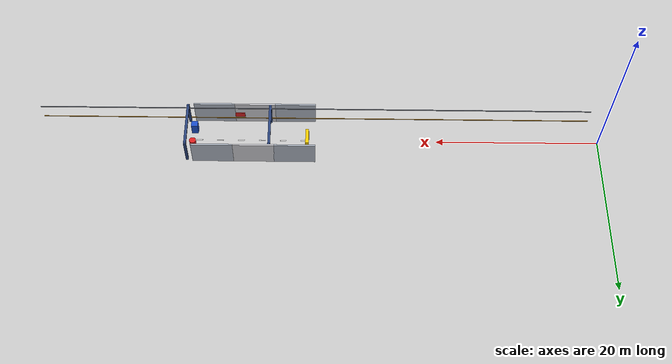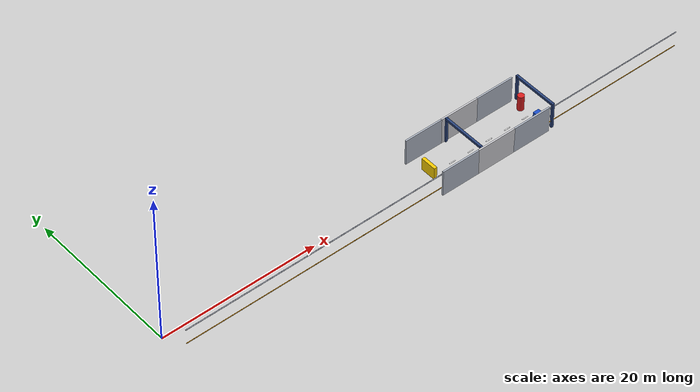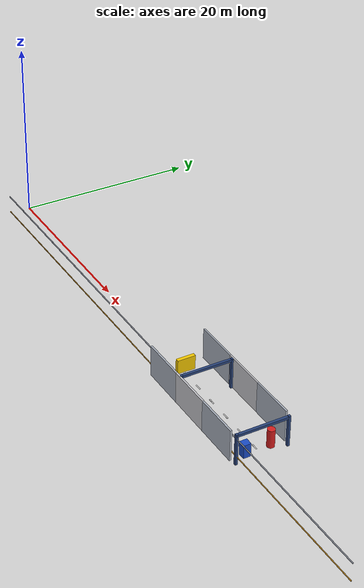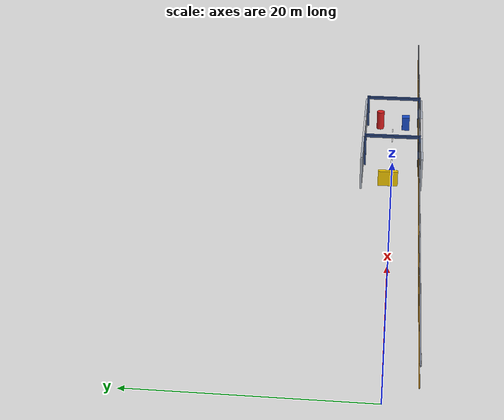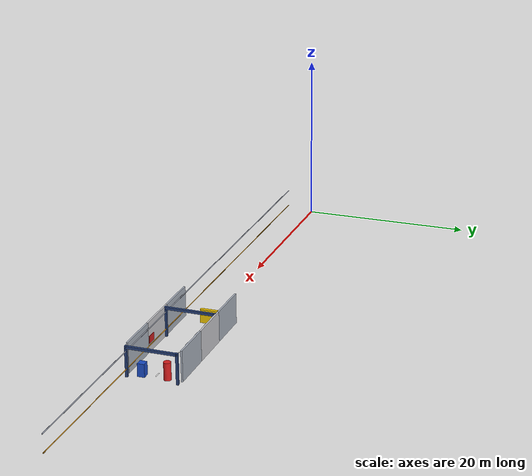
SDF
<sdf version="1.10">
 <world name="tunnel_circuit">
  <model name="tw_Ao_7">
   <static>true</static>
   <pose>37.500 -3.000 1.750 0 0 0.0000</pose>
   <link name="link">
    <collision name="col"><geometry><box><size>5.060 0.200 3.500</size></box></geometry></collision>
    <visual name="vis">
     <geometry><box><size>5.060 0.200 3.500</size></box></geometry>
     <material>
      <ambient>0.42 0.44 0.48 1</ambient>
      <diffuse>0.68 0.71 0.76 1</diffuse>
      <specular>0.1 0.1 0.1 1</specular>
      <pbr>
       <metal><albedo_map>detail.png</albedo_map><roughness>0.9</roughness><metalness>0.0</metalness></metal>
      </pbr>
     </material>
    </visual>
   </link>
  </model>
  <model name="tw_Ao_8">
   <static>true</static>
   <pose>42.500 -3.000 1.750 0 0 0.0000</pose>
   <link name="link">
    <collision name="col"><geometry><box><size>5.060 0.200 3.500</size></box></geometry></collision>
    <visual name="vis">
     <geometry><box><size>5.060 0.200 3.500</size></box></geometry>
     <material>
      <ambient>0.50 0.50 0.52 1</ambient>
      <diffuse>0.80 0.80 0.82 1</diffuse>
      <specular>0.1 0.1 0.1 1</specular>
      <pbr>
       <metal><albedo_map>detail.png</albedo_map><roughness>0.92</roughness><metalness>0.0</metalness></metal>
      </pbr>
     </material>
    </visual>
   </link>
  </model>
  <model name="tw_Ao_9">
   <static>true</static>
   <pose>47.500 -3.000 1.750 0 0 0.0000</pose>
   <link name="link">
    <collision name="col"><geometry><box><size>5.060 0.200 3.500</size></box></geometry></collision>
    <visual name="vis">
     <geometry><box><size>5.060 0.200 3.500</size></box></geometry>
     <material>
      <ambient>0.42 0.44 0.48 1</ambient>
      <diffuse>0.68 0.71 0.76 1</diffuse>
      <specular>0.1 0.1 0.1 1</specular>
      <pbr>
       <metal><albedo_map>detail.png</albedo_map><roughness>0.9</roughness><metalness>0.0</metalness></metal>
      </pbr>
     </material>
    </visual>
   </link>
  </model>
  <model name="tw_Ai_7">
   <static>true</static>
   <pose>37.500 3.000 1.750 0 0 0.0000</pose>
   <link name="link">
    <collision name="col"><geometry><box><size>5.060 0.200 3.500</size></box></geometry></collision>
    <visual name="vis">
     <geometry><box><size>5.060 0.200 3.500</size></box></geometry>
     <material>
      <ambient>0.42 0.44 0.48 1</ambient>
      <diffuse>0.68 0.71 0.76 1</diffuse>
      <specular>0.1 0.1 0.1 1</specular>
      <pbr>
       <metal><albedo_map>detail.png</albedo_map><roughness>0.9</roughness><metalness>0.0</metalness></metal>
      </pbr>
     </material>
    </visual>
   </link>
  </model>
  <model name="tw_Ai_8">
   <static>true</static>
   <pose>42.500 3.000 1.750 0 0 0.0000</pose>
   <link name="link">
    <collision name="col"><geometry><box><size>5.060 0.200 3.500</size></box></geometry></collision>
    <visual name="vis">
     <geometry><box><size>5.060 0.200 3.500</size></box></geometry>
     <material>
      <ambient>0.50 0.50 0.52 1</ambient>
      <diffuse>0.80 0.80 0.82 1</diffuse>
      <specular>0.1 0.1 0.1 1</specular>
      <pbr>
       <metal><albedo_map>detail.png</albedo_map><roughness>0.92</roughness><metalness>0.0</metalness></metal>
      </pbr>
     </material>
    </visual>
   </link>
  </model>
  <model name="tw_Ai_9">
   <static>true</static>
   <pose>47.500 3.000 1.750 0 0 0.0000</pose>
   <link name="link">
    <collision name="col"><geometry><box><size>5.060 0.200 3.500</size></box></geometry></collision>
    <visual name="vis">
     <geometry><box><size>5.060 0.200 3.500</size></box></geometry>
     <material>
      <ambient>0.42 0.44 0.48 1</ambient>
      <diffuse>0.68 0.71 0.76 1</diffuse>
      <specular>0.1 0.1 0.1 1</specular>
      <pbr>
       <metal><albedo_map>detail.png</albedo_map><roughness>0.9</roughness><metalness>0.0</metalness></metal>
      </pbr>
     </material>
    </visual>
   </link>
  </model>
  <model name="rib4_p">
   <static>true</static>
   <pose>40.566 2.820 1.750 0 0 0.0000</pose>
   <link name="link">
    <collision name="col"><geometry><box><size>0.300 0.250 3.500</size></box></geometry></collision>
    <visual name="vis">
     <geometry><box><size>0.300 0.250 3.500</size></box></geometry>
     <material>
      <ambient>0.10 0.16 0.30 1</ambient>
      <diffuse>0.16 0.26 0.48 1</diffuse>
      <specular>0.3 0.3 0.35 1</specular>
     </material>
    </visual>
   </link>
  </model>
  <model name="rib4_m">
   <static>true</static>
   <pose>40.566 -2.820 1.750 0 0 0.0000</pose>
   <link name="link">
    <collision name="col"><geometry><box><size>0.300 0.250 3.500</size></box></geometry></collision>
    <visual name="vis">
     <geometry><box><size>0.300 0.250 3.500</size></box></geometry>
     <material>
      <ambient>0.10 0.16 0.30 1</ambient>
      <diffuse>0.16 0.26 0.48 1</diffuse>
      <specular>0.3 0.3 0.35 1</specular>
     </material>
    </visual>
   </link>
  </model>
  <model name="rib4_c">
   <static>true</static>
   <pose>40.566 0.000 3.340 0 0 0.0000</pose>
   <link name="link">
    <collision name="col"><geometry><box><size>0.300 5.700 0.280</size></box></geometry></collision>
    <visual name="vis">
     <geometry><box><size>0.300 5.700 0.280</size></box></geometry>
     <material>
      <ambient>0.10 0.16 0.30 1</ambient>
      <diffuse>0.16 0.26 0.48 1</diffuse>
      <specular>0.3 0.3 0.35 1</specular>
     </material>
    </visual>
   </link>
  </model>
  <model name="rib5_p">
   <static>true</static>
   <pose>50.708 2.820 1.750 0 0 0.0000</pose>
   <link name="link">
    <collision name="col"><geometry><box><size>0.300 0.250 3.500</size></box></geometry></collision>
    <visual name="vis">
     <geometry><box><size>0.300 0.250 3.500</size></box></geometry>
     <material>
      <ambient>0.10 0.16 0.30 1</ambient>
      <diffuse>0.16 0.26 0.48 1</diffuse>
      <specular>0.3 0.3 0.35 1</specular>
     </material>
    </visual>
   </link>
  </model>
  <model name="rib5_m">
   <static>true</static>
   <pose>50.708 -2.820 1.750 0 0 0.0000</pose>
   <link name="link">
    <collision name="col"><geometry><box><size>0.300 0.250 3.500</size></box></geometry></collision>
    <visual name="vis">
     <geometry><box><size>0.300 0.250 3.500</size></box></geometry>
     <material>
      <ambient>0.10 0.16 0.30 1</ambient>
      <diffuse>0.16 0.26 0.48 1</diffuse>
      <specular>0.3 0.3 0.35 1</specular>
     </material>
    </visual>
   </link>
  </model>
  <model name="rib5_c">
   <static>true</static>
   <pose>50.708 0.000 3.340 0 0 0.0000</pose>
   <link name="link">
    <collision name="col"><geometry><box><size>0.300 5.700 0.280</size></box></geometry></collision>
    <visual name="vis">
     <geometry><box><size>0.300 5.700 0.280</size></box></geometry>
     <material>
      <ambient>0.10 0.16 0.30 1</ambient>
      <diffuse>0.16 0.26 0.48 1</diffuse>
      <specular>0.3 0.3 0.35 1</specular>
     </material>
    </visual>
   </link>
  </model>
  <model name="sign3">
   <static>true</static>
   <pose>44.369 -2.840 1.500 0 0 0.0000</pose>
   <link name="link">
    <visual name="vis">
     <geometry><box><size>1.200 0.050 0.800</size></box></geometry>
     <material>
      <ambient>0.55 0.08 0.08 1</ambient>
      <diffuse>0.82 0.12 0.12 1</diffuse>
      <specular>0.1 0.1 0.1 1</specular>
     </material>
    </visual>
   </link>
  </model>
  <model name="pipe_A">
   <static>true</static>
   <pose>35.000 -2.780 2.900 0 1.5708 0</pose>
   <link name="link">
    <visual name="vis">
     <geometry><cylinder><radius>0.06</radius><length>68.000</length></cylinder></geometry>
     <material>
      <ambient>0.35 0.36 0.40 1</ambient>
      <diffuse>0.55 0.57 0.62 1</diffuse>
      <specular>0.4 0.4 0.4 1</specular>
     </material>
    </visual>
   </link>
  </model>
  <model name="tray_A">
   <static>true</static>
   <pose>35.000 -2.780 0.900 0 1.5708 0</pose>
   <link name="link">
    <visual name="vis">
     <geometry><cylinder><radius>0.05</radius><length>68.000</length></cylinder></geometry>
     <material>
      <ambient>0.45 0.30 0.05 1</ambient>
      <diffuse>0.75 0.52 0.10 1</diffuse>
      <specular>0.1 0.1 0.1 1</specular>
     </material>
    </visual>
   </link>
  </model>
  <model name="dash14">
   <static>true</static>
   <pose>36.406 0.000 0.012 0 0 0.0000</pose>
   <link name="link">
    <visual name="vis">
     <geometry><box><size>0.800 0.120 0.020</size></box></geometry>
     <material>
      <ambient>0.7 0.7 0.7 1</ambient>
      <diffuse>0.92 0.92 0.92 1</diffuse>
      <specular>0.1 0.1 0.1 1</specular>
     </material>
    </visual>
   </link>
  </model>
  <model name="dash15">
   <static>true</static>
   <pose>39.006 0.000 0.012 0 0 0.0000</pose>
   <link name="link">
    <visual name="vis">
     <geometry><box><size>0.800 0.120 0.020</size></box></geometry>
     <material>
      <ambient>0.7 0.7 0.7 1</ambient>
      <diffuse>0.92 0.92 0.92 1</diffuse>
      <specular>0.1 0.1 0.1 1</specular>
     </material>
    </visual>
   </link>
  </model>
  <model name="dash16">
   <static>true</static>
   <pose>41.607 0.000 0.012 0 0 0.0000</pose>
   <link name="link">
    <visual name="vis">
     <geometry><box><size>0.800 0.120 0.020</size></box></geometry>
     <material>
      <ambient>0.7 0.7 0.7 1</ambient>
      <diffuse>0.92 0.92 0.92 1</diffuse>
      <specular>0.1 0.1 0.1 1</specular>
     </material>
    </visual>
   </link>
  </model>
  <model name="dash17">
   <static>true</static>
   <pose>44.207 0.000 0.012 0 0 0.0000</pose>
   <link name="link">
    <visual name="vis">
     <geometry><box><size>0.800 0.120 0.020</size></box></geometry>
     <material>
      <ambient>0.7 0.7 0.7 1</ambient>
      <diffuse>0.92 0.92 0.92 1</diffuse>
      <specular>0.1 0.1 0.1 1</specular>
     </material>
    </visual>
   </link>
  </model>
  <model name="dash18">
   <static>true</static>
   <pose>46.807 0.000 0.012 0 0 0.0000</pose>
   <link name="link">
    <visual name="vis">
     <geometry><box><size>0.800 0.120 0.020</size></box></geometry>
     <material>
      <ambient>0.7 0.7 0.7 1</ambient>
      <diffuse>0.92 0.92 0.92 1</diffuse>
      <specular>0.1 0.1 0.1 1</specular>
     </material>
    </visual>
   </link>
  </model>
  <model name="dash19">
   <static>true</static>
   <pose>49.408 0.000 0.012 0 0 0.0000</pose>
   <link name="link">
    <visual name="vis">
     <geometry><box><size>0.800 0.120 0.020</size></box></geometry>
     <material>
      <ambient>0.7 0.7 0.7 1</ambient>
      <diffuse>0.92 0.92 0.92 1</diffuse>
      <specular>0.1 0.1 0.1 1</specular>
     </material>
    </visual>
   </link>
  </model>
  <model name="obs_A2_block">
   <static>true</static>
   <pose>36.000 0.300 0.800 0 0 0.0000</pose>
   <link name="link">
    <collision name="col"><geometry><box><size>0.400 2.000 1.600</size></box></geometry></collision>
    <visual name="vis">
     <geometry><box><size>0.400 2.000 1.600</size></box></geometry>
     <material>
      <ambient>0.55 0.45 0.0 1</ambient>
      <diffuse>0.95 0.78 0.0 1</diffuse>
      <specular>0.1 0.1 0.1 1</specular>
     </material>
    </visual>
   </link>
  </model>
  <model name="obs_A3_left">
   <static>true</static>
   <pose>50.000 1.400 1.000 0 0 0</pose>
   <link name="link">
    <collision name="col">
     <geometry><cylinder><radius>0.4</radius><length>2.0</length></cylinder></geometry>
    </collision>
    <visual name="vis">
     <geometry><cylinder><radius>0.4</radius><length>2.000</length></cylinder></geometry>
     <material>
      <ambient>0.45 0.07 0.07 1</ambient>
      <diffuse>0.85 0.12 0.12 1</diffuse>
      <specular>0.3 0.3 0.3 1</specular>
     </material>
    </visual>
   </link>
  </model>
  <model name="obs_A3_right">
   <static>true</static>
   <pose>50.000 -1.400 0.750 0 0 0.0000</pose>
   <link name="link">
    <collision name="col"><geometry><box><size>0.800 0.800 1.500</size></box></geometry></collision>
    <visual name="vis">
     <geometry><box><size>0.800 0.800 1.500</size></box></geometry>
     <material>
      <ambient>0.06 0.18 0.45 1</ambient>
      <diffuse>0.10 0.30 0.78 1</diffuse>
      <specular>0.3 0.3 0.4 1</specular>
     </material>
    </visual>
   </link>
  </model>
 </world>
</sdf>
